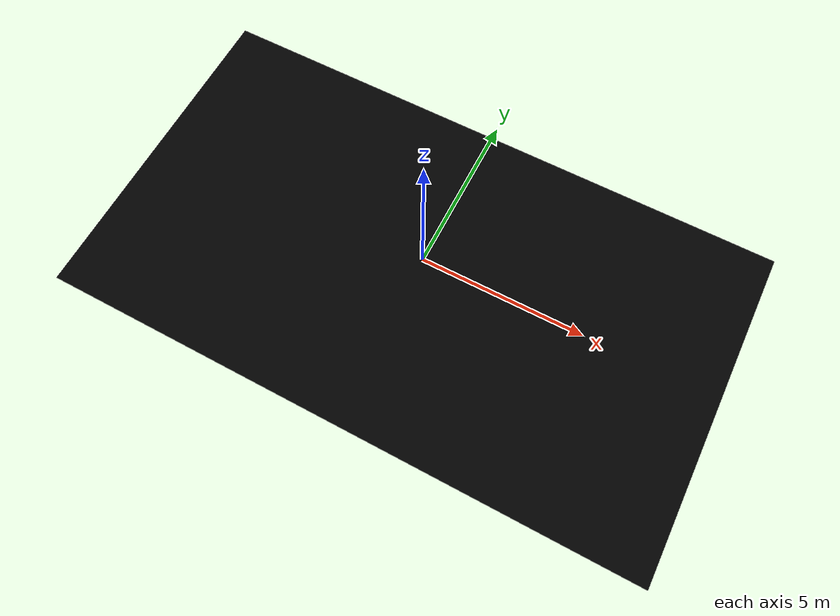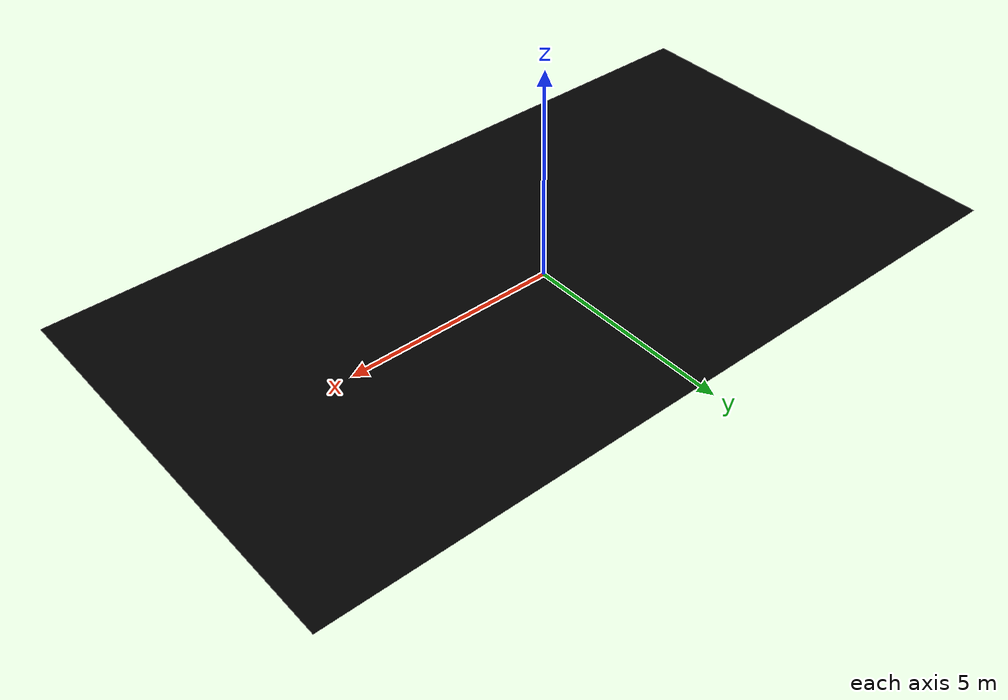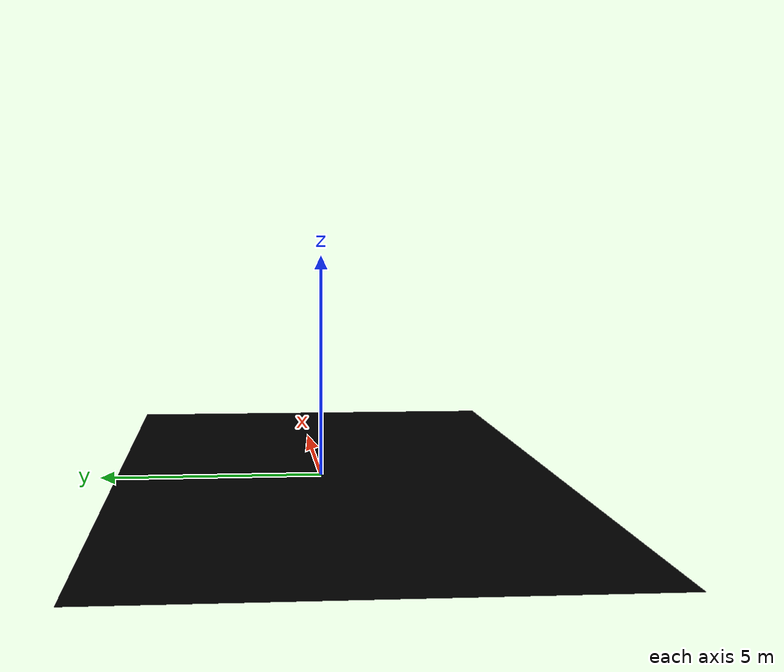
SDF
<?xml version='1.0'?>
<sdf version='1.7'>
  <model name='black_rect'>
    <pose>0 -0.352 0 0 -0 0</pose>
    <link name='Wall_9'>
      <collision name='Wall_9_Collision'>
        <geometry>
          <box>
            <size>18 10 0</size>
          </box>
        </geometry>
        <pose>0 0 0 0 -0 0</pose>
      </collision>
      <visual name='Wall_9_Visual'>
        <pose>0 0 0 0 -0 0</pose>
        <geometry>
          <box>
            <size>18 10 0</size>
          </box>
        </geometry>
        <material>
          <script>
            <uri>model://black_rect/materials/scripts</uri>
            <uri>model://black_rect/materials/textures</uri>
            <name>black_rectMat/Diffuse</name>
          </script>
          <ambient>0 0 0 1</ambient>
        </material>
        <meta>
          <layer>0</layer>
        </meta>
      </visual>
      <pose>0 0 0 0 -0 0</pose>
    </link>
    <static>1</static>
  </model>
</sdf>
